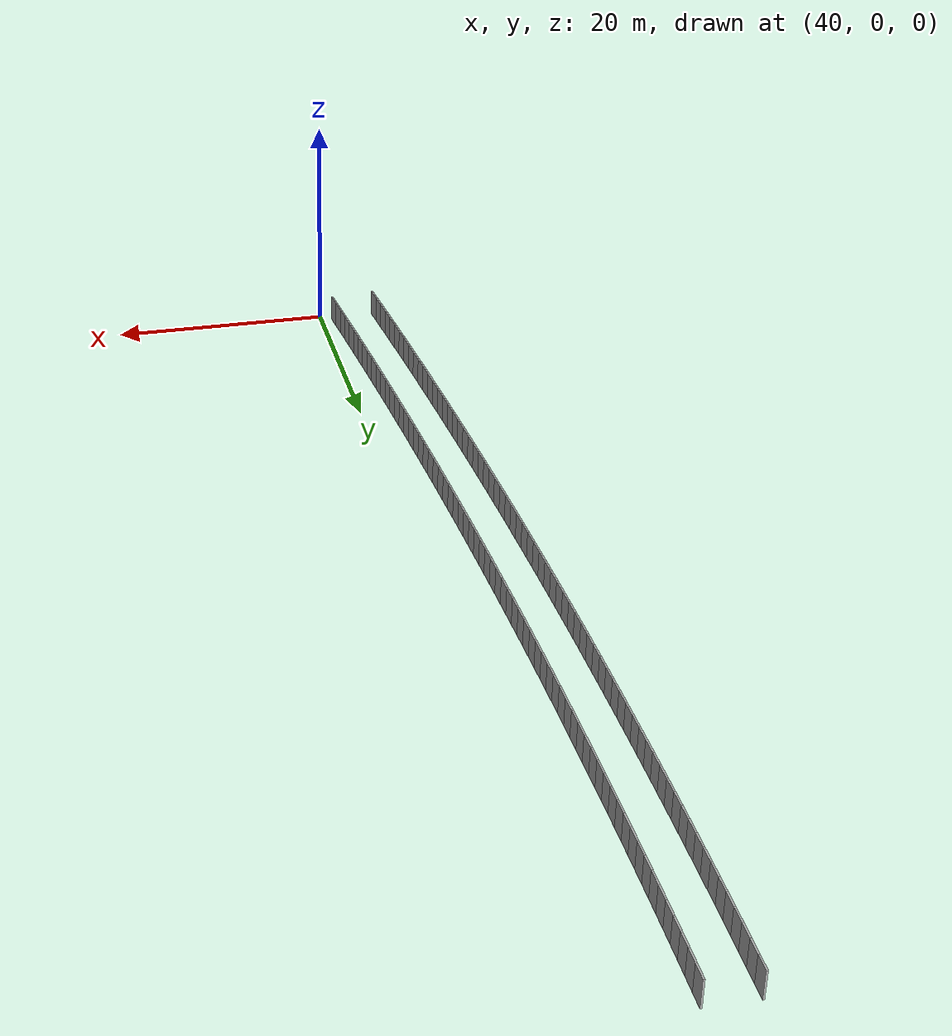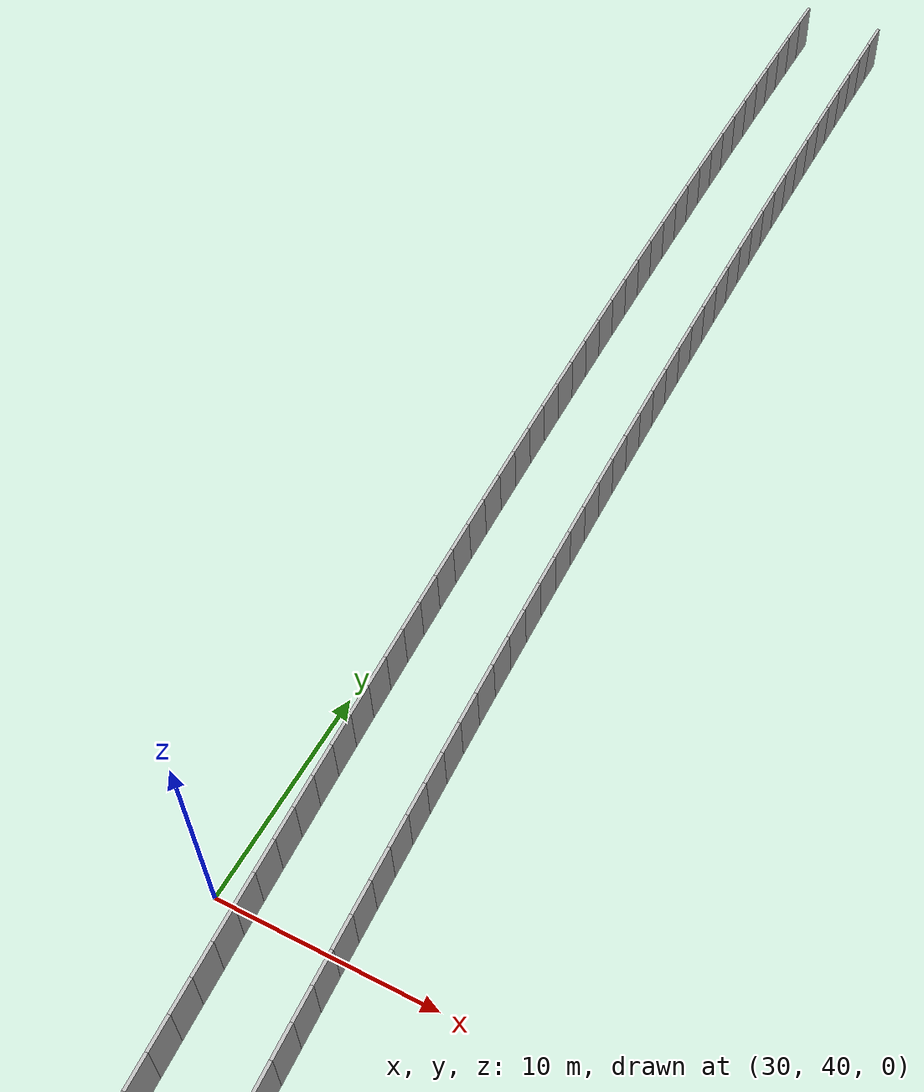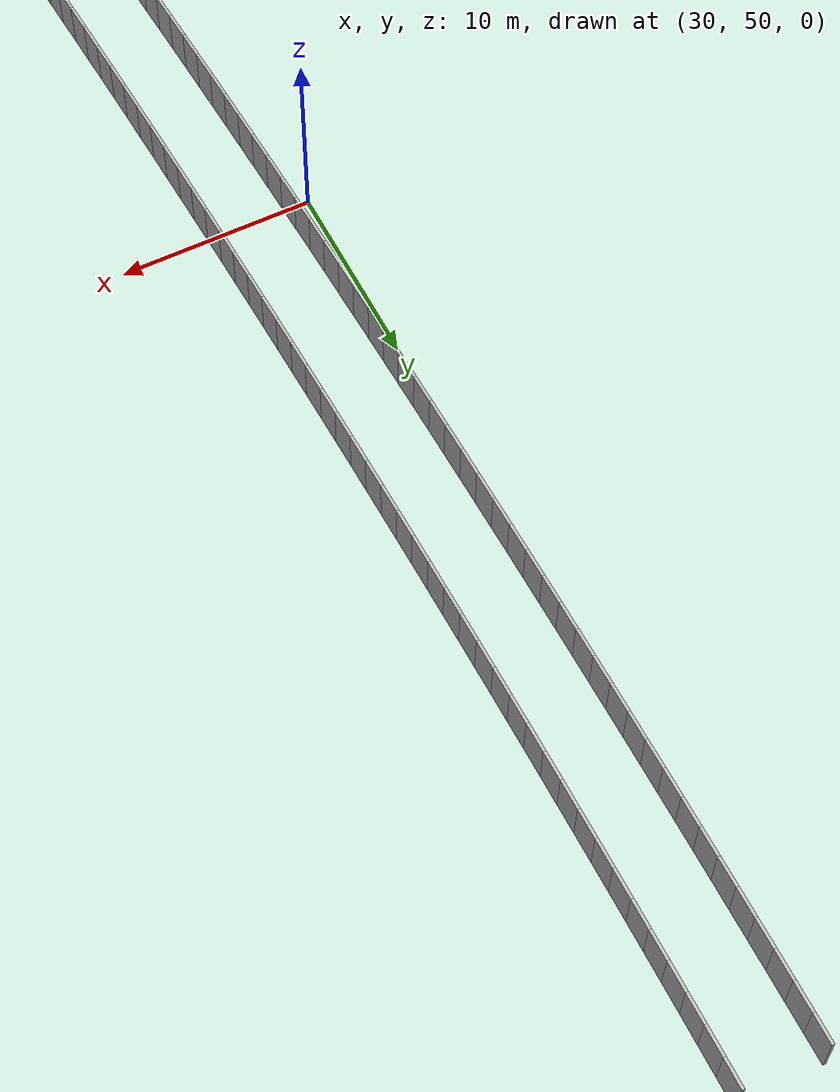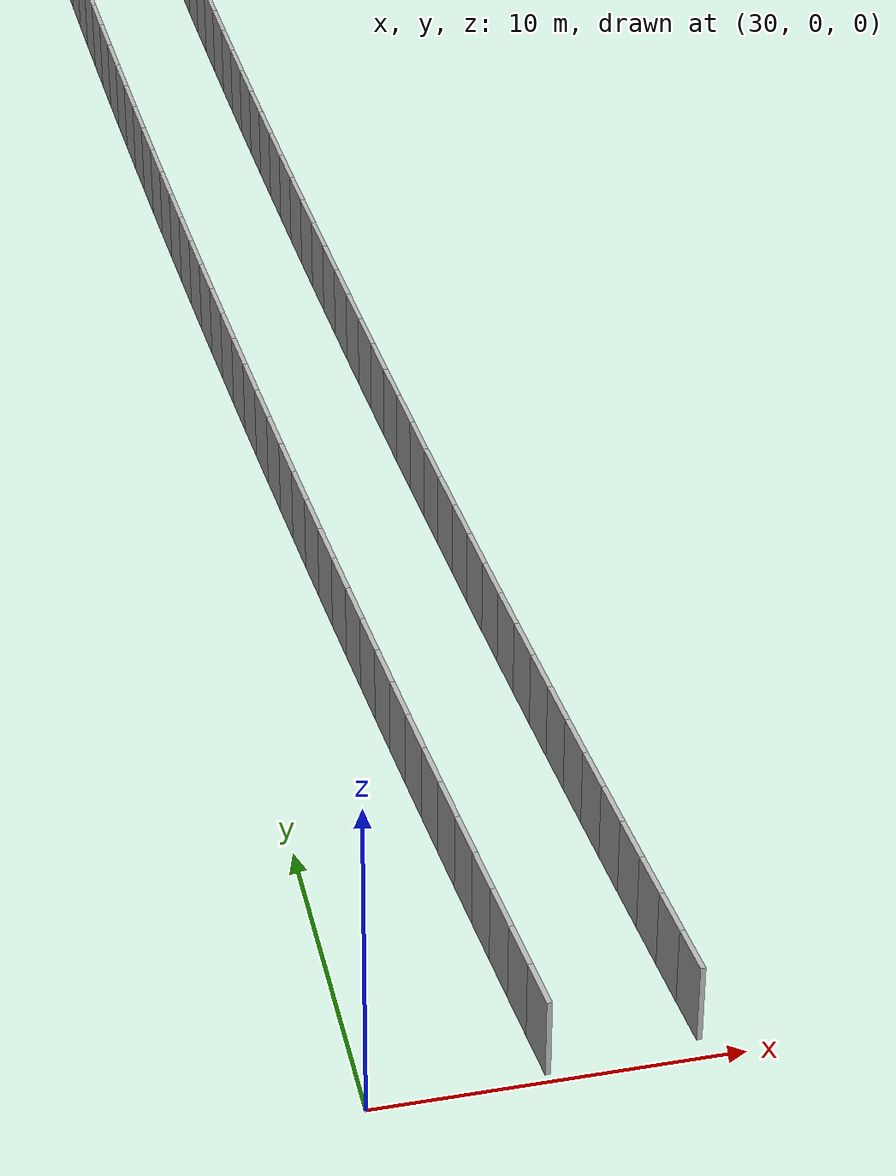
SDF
<sdf version="1.6">
 <model name="sps_0112">
  <static>1</static>
  <allow_auto_disable>0</allow_auto_disable>
  <link name="Wall5244">
   <collision name="collision"><geometry><box><size>1.49643 0.15 2.5</size></box></geometry></collision>
   <visual name="visual">
    <geometry><box><size>1.49643 0.15 2.5</size></box></geometry>
    <transparency>0.0</transparency>
   </visual>
   <pose>34.4289 98.5549 1.25 0 0 -1.57691</pose>
  </link>
  <link name="Wall5245">
   <collision name="collision"><geometry><box><size>1.49666 0.15 2.5</size></box></geometry></collision>
   <visual name="visual">
    <geometry><box><size>1.49666 0.15 2.5</size></box></geometry>
    <transparency>0.0</transparency>
   </visual>
   <pose>34.4209 97.0584 1.25 0 0 -1.57536</pose>
  </link>
  <link name="Wall5246">
   <collision name="collision"><geometry><box><size>1.49641 0.15 2.5</size></box></geometry></collision>
   <visual name="visual">
    <geometry><box><size>1.49641 0.15 2.5</size></box></geometry>
    <transparency>0.0</transparency>
   </visual>
   <pose>34.4152 95.5619 1.25 0 0 -1.57386</pose>
  </link>
  <link name="Wall5247">
   <collision name="collision"><geometry><box><size>1.49658 0.15 2.5</size></box></geometry></collision>
   <visual name="visual">
    <geometry><box><size>1.49658 0.15 2.5</size></box></geometry>
    <transparency>0.0</transparency>
   </visual>
   <pose>34.4118 94.0654 1.25 0 0 -1.57226</pose>
  </link>
  <link name="Wall5248">
   <collision name="collision"><geometry><box><size>1.49658 0.15 2.5</size></box></geometry></collision>
   <visual name="visual">
    <geometry><box><size>1.49658 0.15 2.5</size></box></geometry>
    <transparency>0.0</transparency>
   </visual>
   <pose>34.4108 92.5688 1.25 0 0 -1.57067</pose>
  </link>
  <link name="Wall5249">
   <collision name="collision"><geometry><box><size>1.4964 0.15 2.5</size></box></geometry></collision>
   <visual name="visual">
    <geometry><box><size>1.4964 0.15 2.5</size></box></geometry>
    <transparency>0.0</transparency>
   </visual>
   <pose>34.4122 91.0723 1.25 0 0 -1.56904</pose>
  </link>
  <link name="Wall5250">
   <collision name="collision"><geometry><box><size>1.49665 0.15 2.5</size></box></geometry></collision>
   <visual name="visual">
    <geometry><box><size>1.49665 0.15 2.5</size></box></geometry>
    <transparency>0.0</transparency>
   </visual>
   <pose>34.416 89.5758 1.25 0 0 -1.56745</pose>
  </link>
  <link name="Wall5251">
   <collision name="collision"><geometry><box><size>1.49642 0.15 2.5</size></box></geometry></collision>
   <visual name="visual">
    <geometry><box><size>1.49642 0.15 2.5</size></box></geometry>
    <transparency>0.0</transparency>
   </visual>
   <pose>34.4222 88.0793 1.25 0 0 -1.56586</pose>
  </link>
  <link name="Wall5252">
   <collision name="collision"><geometry><box><size>1.49661 0.15 2.5</size></box></geometry></collision>
   <visual name="visual">
    <geometry><box><size>1.49661 0.15 2.5</size></box></geometry>
    <transparency>0.0</transparency>
   </visual>
   <pose>34.4307 86.5828 1.25 0 0 -1.56427</pose>
  </link>
  <link name="Wall5253">
   <collision name="collision"><geometry><box><size>1.49645 0.15 2.5</size></box></geometry></collision>
   <visual name="visual">
    <geometry><box><size>1.49645 0.15 2.5</size></box></geometry>
    <transparency>0.0</transparency>
   </visual>
   <pose>34.4416 85.0863 1.25 0 0 -1.56276</pose>
  </link>
  <link name="Wall5254">
   <collision name="collision"><geometry><box><size>1.49665 0.15 2.5</size></box></geometry></collision>
   <visual name="visual">
    <geometry><box><size>1.49665 0.15 2.5</size></box></geometry>
    <transparency>0.0</transparency>
   </visual>
   <pose>34.4549 83.5898 1.25 0 0 -1.56117</pose>
  </link>
  <link name="Wall5255">
   <collision name="collision"><geometry><box><size>1.4965 0.15 2.5</size></box></geometry></collision>
   <visual name="visual">
    <geometry><box><size>1.4965 0.15 2.5</size></box></geometry>
    <transparency>0.0</transparency>
   </visual>
   <pose>34.4705 82.0933 1.25 0 0 -1.55946</pose>
  </link>
  <link name="Wall5256">
   <collision name="collision"><geometry><box><size>1.49652 0.15 2.5</size></box></geometry></collision>
   <visual name="visual">
    <geometry><box><size>1.49652 0.15 2.5</size></box></geometry>
    <transparency>0.0</transparency>
   </visual>
   <pose>34.4886 80.5969 1.25 0 0 -1.55795</pose>
  </link>
  <link name="Wall5257">
   <collision name="collision"><geometry><box><size>1.49637 0.15 2.5</size></box></geometry></collision>
   <visual name="visual">
    <geometry><box><size>1.49637 0.15 2.5</size></box></geometry>
    <transparency>0.0</transparency>
   </visual>
   <pose>34.5091 79.1006 1.25 0 0 -1.55636</pose>
  </link>
  <link name="Wall5258">
   <collision name="collision"><geometry><box><size>1.49659 0.15 2.5</size></box></geometry></collision>
   <visual name="visual">
    <geometry><box><size>1.49659 0.15 2.5</size></box></geometry>
    <transparency>0.0</transparency>
   </visual>
   <pose>34.5319 77.6043 1.25 0 0 -1.55477</pose>
  </link>
  <link name="Wall5259">
   <collision name="collision"><geometry><box><size>1.49644 0.15 2.5</size></box></geometry></collision>
   <visual name="visual">
    <geometry><box><size>1.49644 0.15 2.5</size></box></geometry>
    <transparency>0.0</transparency>
   </visual>
   <pose>34.5569 76.108 1.25 0 0 -1.5533</pose>
  </link>
  <link name="Wall5260">
   <collision name="collision"><geometry><box><size>1.49668 0.15 2.5</size></box></geometry></collision>
   <visual name="visual">
    <geometry><box><size>1.49668 0.15 2.5</size></box></geometry>
    <transparency>0.0</transparency>
   </visual>
   <pose>34.5844 74.6117 1.25 0 0 -1.55155</pose>
  </link>
  <link name="Wall5261">
   <collision name="collision"><geometry><box><size>1.49654 0.15 2.5</size></box></geometry></collision>
   <visual name="visual">
    <geometry><box><size>1.49654 0.15 2.5</size></box></geometry>
    <transparency>0.0</transparency>
   </visual>
   <pose>34.6143 73.1154 1.25 0 0 -1.55008</pose>
  </link>
  <link name="Wall5262">
   <collision name="collision"><geometry><box><size>1.49634 0.15 2.5</size></box></geometry></collision>
   <visual name="visual">
    <geometry><box><size>1.49634 0.15 2.5</size></box></geometry>
    <transparency>0.0</transparency>
   </visual>
   <pose>34.6465 71.6193 1.25 0 0 -1.54848</pose>
  </link>
  <link name="Wall5263">
   <collision name="collision"><geometry><box><size>1.49664 0.15 2.5</size></box></geometry></collision>
   <visual name="visual">
    <geometry><box><size>1.49664 0.15 2.5</size></box></geometry>
    <transparency>0.0</transparency>
   </visual>
   <pose>34.6811 70.1232 1.25 0 0 -1.54686</pose>
  </link>
  <link name="Wall5264">
   <collision name="collision"><geometry><box><size>1.49646 0.15 2.5</size></box></geometry></collision>
   <visual name="visual">
    <geometry><box><size>1.49646 0.15 2.5</size></box></geometry>
    <transparency>0.0</transparency>
   </visual>
   <pose>34.7182 68.6271 1.25 0 0 -1.54526</pose>
  </link>
  <link name="Wall5265">
   <collision name="collision"><geometry><box><size>1.49658 0.15 2.5</size></box></geometry></collision>
   <visual name="visual">
    <geometry><box><size>1.49658 0.15 2.5</size></box></geometry>
    <transparency>0.0</transparency>
   </visual>
   <pose>34.7576 67.1311 1.25 0 0 -1.54367</pose>
  </link>
  <link name="Wall5266">
   <collision name="collision"><geometry><box><size>1.49659 0.15 2.5</size></box></geometry></collision>
   <visual name="visual">
    <geometry><box><size>1.49659 0.15 2.5</size></box></geometry>
    <transparency>0.0</transparency>
   </visual>
   <pose>34.7994 65.6351 1.25 0 0 -1.54204</pose>
  </link>
  <link name="Wall5267">
   <collision name="collision"><geometry><box><size>1.49647 0.15 2.5</size></box></geometry></collision>
   <visual name="visual">
    <geometry><box><size>1.49647 0.15 2.5</size></box></geometry>
    <transparency>0.0</transparency>
   </visual>
   <pose>34.8435 64.1392 1.25 0 0 -1.54061</pose>
  </link>
  <link name="Wall5268">
   <collision name="collision"><geometry><box><size>1.49655 0.15 2.5</size></box></geometry></collision>
   <visual name="visual">
    <geometry><box><size>1.49655 0.15 2.5</size></box></geometry>
    <transparency>0.0</transparency>
   </visual>
   <pose>34.8899 62.6434 1.25 0 0 -1.53886</pose>
  </link>
  <link name="Wall5269">
   <collision name="collision"><geometry><box><size>1.49644 0.15 2.5</size></box></geometry></collision>
   <visual name="visual">
    <geometry><box><size>1.49644 0.15 2.5</size></box></geometry>
    <transparency>0.0</transparency>
   </visual>
   <pose>34.9388 61.1477 1.25 0 0 -1.53739</pose>
  </link>
  <link name="Wall5270">
   <collision name="collision"><geometry><box><size>1.49652 0.15 2.5</size></box></geometry></collision>
   <visual name="visual">
    <geometry><box><size>1.49652 0.15 2.5</size></box></geometry>
    <transparency>0.0</transparency>
   </visual>
   <pose>34.99 59.6521 1.25 0 0 -1.53576</pose>
  </link>
  <link name="Wall5271">
   <collision name="collision"><geometry><box><size>1.49661 0.15 2.5</size></box></geometry></collision>
   <visual name="visual">
    <geometry><box><size>1.49661 0.15 2.5</size></box></geometry>
    <transparency>0.0</transparency>
   </visual>
   <pose>35.0437 58.1565 1.25 0 0 -1.53417</pose>
  </link>
  <link name="Wall5272">
   <collision name="collision"><geometry><box><size>1.4967 0.15 2.5</size></box></geometry></collision>
   <visual name="visual">
    <geometry><box><size>1.4967 0.15 2.5</size></box></geometry>
    <transparency>0.0</transparency>
   </visual>
   <pose>35.0997 56.6609 1.25 0 0 -1.53258</pose>
  </link>
  <link name="Wall5273">
   <collision name="collision"><geometry><box><size>1.49636 0.15 2.5</size></box></geometry></collision>
   <visual name="visual">
    <geometry><box><size>1.49636 0.15 2.5</size></box></geometry>
    <transparency>0.0</transparency>
   </visual>
   <pose>35.158 55.1655 1.25 0 0 -1.5311</pose>
  </link>
  <link name="Wall5274">
   <collision name="collision"><geometry><box><size>1.49652 0.15 2.5</size></box></geometry></collision>
   <visual name="visual">
    <geometry><box><size>1.49652 0.15 2.5</size></box></geometry>
    <transparency>0.0</transparency>
   </visual>
   <pose>35.2186 53.6703 1.25 0 0 -1.52947</pose>
  </link>
  <link name="Wall5275">
   <collision name="collision"><geometry><box><size>1.49656 0.15 2.5</size></box></geometry></collision>
   <visual name="visual">
    <geometry><box><size>1.49656 0.15 2.5</size></box></geometry>
    <transparency>0.0</transparency>
   </visual>
   <pose>35.2816 52.1751 1.25 0 0 -1.52788</pose>
  </link>
  <link name="Wall5276">
   <collision name="collision"><geometry><box><size>1.49649 0.15 2.5</size></box></geometry></collision>
   <visual name="visual">
    <geometry><box><size>1.49649 0.15 2.5</size></box></geometry>
    <transparency>0.0</transparency>
   </visual>
   <pose>35.3471 50.68 1.25 0 0 -1.52616</pose>
  </link>
  <link name="Wall5277">
   <collision name="collision"><geometry><box><size>1.49659 0.15 2.5</size></box></geometry></collision>
   <visual name="visual">
    <geometry><box><size>1.49659 0.15 2.5</size></box></geometry>
    <transparency>0.0</transparency>
   </visual>
   <pose>35.415 49.185 1.25 0 0 -1.52465</pose>
  </link>
  <link name="Wall5278">
   <collision name="collision"><geometry><box><size>1.49651 0.15 2.5</size></box></geometry></collision>
   <visual name="visual">
    <geometry><box><size>1.49651 0.15 2.5</size></box></geometry>
    <transparency>0.0</transparency>
   </visual>
   <pose>35.4852 47.6901 1.25 0 0 -1.5231</pose>
  </link>
  <link name="Wall5279">
   <collision name="collision"><geometry><box><size>1.49644 0.15 2.5</size></box></geometry></collision>
   <visual name="visual">
    <geometry><box><size>1.49644 0.15 2.5</size></box></geometry>
    <transparency>0.0</transparency>
   </visual>
   <pose>35.5576 46.1954 1.25 0 0 -1.52159</pose>
  </link>
  <link name="Wall5280">
   <collision name="collision"><geometry><box><size>1.49669 0.15 2.5</size></box></geometry></collision>
   <visual name="visual">
    <geometry><box><size>1.49669 0.15 2.5</size></box></geometry>
    <transparency>0.0</transparency>
   </visual>
   <pose>35.6326 44.7007 1.25 0 0 -1.51984</pose>
  </link>
  <link name="Wall5281">
   <collision name="collision"><geometry><box><size>1.4965 0.15 2.5</size></box></geometry></collision>
   <visual name="visual">
    <geometry><box><size>1.4965 0.15 2.5</size></box></geometry>
    <transparency>0.0</transparency>
   </visual>
   <pose>35.7099 43.2061 1.25 0 0 -1.5184</pose>
  </link>
  <link name="Wall5282">
   <collision name="collision"><geometry><box><size>1.49657 0.15 2.5</size></box></geometry></collision>
   <visual name="visual">
    <geometry><box><size>1.49657 0.15 2.5</size></box></geometry>
    <transparency>0.0</transparency>
   </visual>
   <pose>35.7895 41.7117 1.25 0 0 -1.51677</pose>
  </link>
  <link name="Wall5283">
   <collision name="collision"><geometry><box><size>1.49633 0.15 2.5</size></box></geometry></collision>
   <visual name="visual">
    <geometry><box><size>1.49633 0.15 2.5</size></box></geometry>
    <transparency>0.0</transparency>
   </visual>
   <pose>35.8715 40.2175 1.25 0 0 -1.51517</pose>
  </link>
  <link name="Wall5284">
   <collision name="collision"><geometry><box><size>1.49664 0.15 2.5</size></box></geometry></collision>
   <visual name="visual">
    <geometry><box><size>1.49664 0.15 2.5</size></box></geometry>
    <transparency>0.0</transparency>
   </visual>
   <pose>35.9557 38.7234 1.25 0 0 -1.51371</pose>
  </link>
  <link name="Wall5285">
   <collision name="collision"><geometry><box><size>1.49655 0.15 2.5</size></box></geometry></collision>
   <visual name="visual">
    <geometry><box><size>1.49655 0.15 2.5</size></box></geometry>
    <transparency>0.0</transparency>
   </visual>
   <pose>36.0424 37.2293 1.25 0 0 -1.51195</pose>
  </link>
  <link name="Wall5286">
   <collision name="collision"><geometry><box><size>1.49656 0.15 2.5</size></box></geometry></collision>
   <visual name="visual">
    <geometry><box><size>1.49656 0.15 2.5</size></box></geometry>
    <transparency>0.0</transparency>
   </visual>
   <pose>36.1316 35.7354 1.25 0 0 -1.51048</pose>
  </link>
  <link name="Wall5287">
   <collision name="collision"><geometry><box><size>1.49647 0.15 2.5</size></box></geometry></collision>
   <visual name="visual">
    <geometry><box><size>1.49647 0.15 2.5</size></box></geometry>
    <transparency>0.0</transparency>
   </visual>
   <pose>36.223 34.2417 1.25 0 0 -1.50876</pose>
  </link>
  <link name="Wall5288">
   <collision name="collision"><geometry><box><size>1.49643 0.15 2.5</size></box></geometry></collision>
   <visual name="visual">
    <geometry><box><size>1.49643 0.15 2.5</size></box></geometry>
    <transparency>0.0</transparency>
   </visual>
   <pose>36.3169 32.7482 1.25 0 0 -1.50725</pose>
  </link>
  <link name="Wall5289">
   <collision name="collision"><geometry><box><size>1.49658 0.15 2.5</size></box></geometry></collision>
   <visual name="visual">
    <geometry><box><size>1.49658 0.15 2.5</size></box></geometry>
    <transparency>0.0</transparency>
   </visual>
   <pose>36.4132 31.2548 1.25 0 0 -1.50566</pose>
  </link>
  <link name="Wall5290">
   <collision name="collision"><geometry><box><size>1.4965 0.15 2.5</size></box></geometry></collision>
   <visual name="visual">
    <geometry><box><size>1.4965 0.15 2.5</size></box></geometry>
    <transparency>0.0</transparency>
   </visual>
   <pose>36.5118 29.7615 1.25 0 0 -1.50406</pose>
  </link>
  <link name="Wall5291">
   <collision name="collision"><geometry><box><size>1.49652 0.15 2.5</size></box></geometry></collision>
   <visual name="visual">
    <geometry><box><size>1.49652 0.15 2.5</size></box></geometry>
    <transparency>0.0</transparency>
   </visual>
   <pose>36.6127 28.2684 1.25 0 0 -1.50259</pose>
  </link>
  <link name="Wall5292">
   <collision name="collision"><geometry><box><size>1.49664 0.15 2.5</size></box></geometry></collision>
   <visual name="visual">
    <geometry><box><size>1.49664 0.15 2.5</size></box></geometry>
    <transparency>0.0</transparency>
   </visual>
   <pose>36.716 26.7754 1.25 0 0 -1.50084</pose>
  </link>
  <link name="Wall5293">
   <collision name="collision"><geometry><box><size>1.49643 0.15 2.5</size></box></geometry></collision>
   <visual name="visual">
    <geometry><box><size>1.49643 0.15 2.5</size></box></geometry>
    <transparency>0.0</transparency>
   </visual>
   <pose>36.8217 25.2826 1.25 0 0 -1.49936</pose>
  </link>
  <link name="Wall5294">
   <collision name="collision"><geometry><box><size>1.49654 0.15 2.5</size></box></geometry></collision>
   <visual name="visual">
    <geometry><box><size>1.49654 0.15 2.5</size></box></geometry>
    <transparency>0.0</transparency>
   </visual>
   <pose>36.9297 23.79 1.25 0 0 -1.49777</pose>
  </link>
  <link name="Wall5295">
   <collision name="collision"><geometry><box><size>1.49661 0.15 2.5</size></box></geometry></collision>
   <visual name="visual">
    <geometry><box><size>1.49661 0.15 2.5</size></box></geometry>
    <transparency>0.0</transparency>
   </visual>
   <pose>37.0402 22.2975 1.25 0 0 -1.49605</pose>
  </link>
  <link name="Wall5296">
   <collision name="collision"><geometry><box><size>1.49652 0.15 2.5</size></box></geometry></collision>
   <visual name="visual">
    <geometry><box><size>1.49652 0.15 2.5</size></box></geometry>
    <transparency>0.0</transparency>
   </visual>
   <pose>37.1529 20.8052 1.25 0 0 -1.49466</pose>
  </link>
  <link name="Wall5297">
   <collision name="collision"><geometry><box><size>1.49672 0.15 2.5</size></box></geometry></collision>
   <visual name="visual">
    <geometry><box><size>1.49672 0.15 2.5</size></box></geometry>
    <transparency>0.0</transparency>
   </visual>
   <pose>37.2681 19.313 1.25 0 0 -1.49295</pose>
  </link>
  <link name="Wall5298">
   <collision name="collision"><geometry><box><size>1.49653 0.15 2.5</size></box></geometry></collision>
   <visual name="visual">
    <geometry><box><size>1.49653 0.15 2.5</size></box></geometry>
    <transparency>0.0</transparency>
   </visual>
   <pose>37.3856 17.821 1.25 0 0 -1.49147</pose>
  </link>
  <link name="Wall5299">
   <collision name="collision"><geometry><box><size>1.49648 0.15 2.5</size></box></geometry></collision>
   <visual name="visual">
    <geometry><box><size>1.49648 0.15 2.5</size></box></geometry>
    <transparency>0.0</transparency>
   </visual>
   <pose>37.5054 16.3293 1.25 0 0 -1.48983</pose>
  </link>
  <link name="Wall5300">
   <collision name="collision"><geometry><box><size>1.49649 0.15 2.5</size></box></geometry></collision>
   <visual name="visual">
    <geometry><box><size>1.49649 0.15 2.5</size></box></geometry>
    <transparency>0.0</transparency>
   </visual>
   <pose>37.6276 14.8378 1.25 0 0 -1.48827</pose>
  </link>
  <link name="Wall5301">
   <collision name="collision"><geometry><box><size>1.49649 0.15 2.5</size></box></geometry></collision>
   <visual name="visual">
    <geometry><box><size>1.49649 0.15 2.5</size></box></geometry>
    <transparency>0.0</transparency>
   </visual>
   <pose>37.752 13.3465 1.25 0 0 -1.48676</pose>
  </link>
  <link name="Wall5302">
   <collision name="collision"><geometry><box><size>1.49653 0.15 2.5</size></box></geometry></collision>
   <visual name="visual">
    <geometry><box><size>1.49653 0.15 2.5</size></box></geometry>
    <transparency>0.0</transparency>
   </visual>
   <pose>37.879 11.8554 1.25 0 0 -1.485</pose>
  </link>
  <link name="Wall5303">
   <collision name="collision"><geometry><box><size>1.49629 0.15 2.5</size></box></geometry></collision>
   <visual name="visual">
    <geometry><box><size>1.49629 0.15 2.5</size></box></geometry>
    <transparency>0.0</transparency>
   </visual>
   <pose>38.0083 10.3646 1.25 0 0 -1.48356</pose>
  </link>
  <link name="Wall5304">
   <collision name="collision"><geometry><box><size>1.49652 0.15 2.5</size></box></geometry></collision>
   <visual name="visual">
    <geometry><box><size>1.49652 0.15 2.5</size></box></geometry>
    <transparency>0.0</transparency>
   </visual>
   <pose>38.1399 8.87398 1.25 0 0 -1.48181</pose>
  </link>
  <link name="Wall5305">
   <collision name="collision"><geometry><box><size>1.49672 0.15 2.5</size></box></geometry></collision>
   <visual name="visual">
    <geometry><box><size>1.49672 0.15 2.5</size></box></geometry>
    <transparency>0.0</transparency>
   </visual>
   <pose>38.274 7.38338 1.25 0 0 -1.48035</pose>
  </link>
  <link name="Wall5306">
   <collision name="collision"><geometry><box><size>1.49652 0.15 2.5</size></box></geometry></collision>
   <visual name="visual">
    <geometry><box><size>1.49652 0.15 2.5</size></box></geometry>
    <transparency>0.0</transparency>
   </visual>
   <pose>38.4105 5.89299 1.25 0 0 -1.4787</pose>
  </link>
  <link name="Wall5307">
   <collision name="collision"><geometry><box><size>1.49653 0.15 2.5</size></box></geometry></collision>
   <visual name="visual">
    <geometry><box><size>1.49653 0.15 2.5</size></box></geometry>
    <transparency>0.0</transparency>
   </visual>
   <pose>38.5492 4.40291 1.25 0 0 -1.47726</pose>
  </link>
  <link name="Wall5308">
   <collision name="collision"><geometry><box><size>1.4966 0.15 2.5</size></box></geometry></collision>
   <visual name="visual">
    <geometry><box><size>1.4966 0.15 2.5</size></box></geometry>
    <transparency>0.0</transparency>
   </visual>
   <pose>38.6902 2.91301 1.25 0 0 -1.47551</pose>
  </link>
  <link name="Wall5309">
   <collision name="collision"><geometry><box><size>1.49644 0.15 2.5</size></box></geometry></collision>
   <visual name="visual">
    <geometry><box><size>1.49644 0.15 2.5</size></box></geometry>
    <transparency>0.0</transparency>
   </visual>
   <pose>38.8337 1.42338 1.25 0 0 -1.47402</pose>
  </link>
  <link name="Wall7040">
   <collision name="collision"><geometry><box><size>1.50302 0.15 2.5</size></box></geometry></collision>
   <visual name="visual">
    <geometry><box><size>1.50302 0.15 2.5</size></box></geometry>
    <transparency>0.0</transparency>
   </visual>
   <pose>30.2897 98.5804 1.25 0 0 -1.57693</pose>
  </link>
  <link name="Wall7041">
   <collision name="collision"><geometry><box><size>1.50319 0.15 2.5</size></box></geometry></collision>
   <visual name="visual">
    <geometry><box><size>1.50319 0.15 2.5</size></box></geometry>
    <transparency>0.0</transparency>
   </visual>
   <pose>30.2815 97.0773 1.25 0 0 -1.57547</pose>
  </link>
  <link name="Wall7042">
   <collision name="collision"><geometry><box><size>1.503 0.15 2.5</size></box></geometry></collision>
   <visual name="visual">
    <geometry><box><size>1.503 0.15 2.5</size></box></geometry>
    <transparency>0.0</transparency>
   </visual>
   <pose>30.2758 95.5742 1.25 0 0 -1.57372</pose>
  </link>
  <link name="Wall7043">
   <collision name="collision"><geometry><box><size>1.50324 0.15 2.5</size></box></geometry></collision>
   <visual name="visual">
    <geometry><box><size>1.50324 0.15 2.5</size></box></geometry>
    <transparency>0.0</transparency>
   </visual>
   <pose>30.2725 94.0711 1.25 0 0 -1.57226</pose>
  </link>
  <link name="Wall7044">
   <collision name="collision"><geometry><box><size>1.50299 0.15 2.5</size></box></geometry></collision>
   <visual name="visual">
    <geometry><box><size>1.50299 0.15 2.5</size></box></geometry>
    <transparency>0.0</transparency>
   </visual>
   <pose>30.2715 92.568 1.25 0 0 -1.57067</pose>
  </link>
  <link name="Wall7045">
   <collision name="collision"><geometry><box><size>1.50299 0.15 2.5</size></box></geometry></collision>
   <visual name="visual">
    <geometry><box><size>1.50299 0.15 2.5</size></box></geometry>
    <transparency>0.0</transparency>
   </visual>
   <pose>30.2729 91.065 1.25 0 0 -1.56905</pose>
  </link>
  <link name="Wall7046">
   <collision name="collision"><geometry><box><size>1.50318 0.15 2.5</size></box></geometry></collision>
   <visual name="visual">
    <geometry><box><size>1.50318 0.15 2.5</size></box></geometry>
    <transparency>0.0</transparency>
   </visual>
   <pose>30.2768 89.5619 1.25 0 0 -1.56734</pose>
  </link>
  <link name="Wall7047">
   <collision name="collision"><geometry><box><size>1.50307 0.15 2.5</size></box></geometry></collision>
   <visual name="visual">
    <geometry><box><size>1.50307 0.15 2.5</size></box></geometry>
    <transparency>0.0</transparency>
   </visual>
   <pose>30.283 88.0588 1.25 0 0 -1.566</pose>
  </link>
  <link name="Wall7048">
   <collision name="collision"><geometry><box><size>1.50321 0.15 2.5</size></box></geometry></collision>
   <visual name="visual">
    <geometry><box><size>1.50321 0.15 2.5</size></box></geometry>
    <transparency>0.0</transparency>
   </visual>
   <pose>30.2916 86.5557 1.25 0 0 -1.56426</pose>
  </link>
  <link name="Wall7049">
   <collision name="collision"><geometry><box><size>1.50304 0.15 2.5</size></box></geometry></collision>
   <visual name="visual">
    <geometry><box><size>1.50304 0.15 2.5</size></box></geometry>
    <transparency>0.0</transparency>
   </visual>
   <pose>30.3026 85.0526 1.25 0 0 -1.56267</pose>
  </link>
  <link name="Wall7050">
   <collision name="collision"><geometry><box><size>1.50306 0.15 2.5</size></box></geometry></collision>
   <visual name="visual">
    <geometry><box><size>1.50306 0.15 2.5</size></box></geometry>
    <transparency>0.0</transparency>
   </visual>
   <pose>30.3159 83.5496 1.25 0 0 -1.56121</pose>
  </link>
  <link name="Wall7051">
   <collision name="collision"><geometry><box><size>1.50309 0.15 2.5</size></box></geometry></collision>
   <visual name="visual">
    <geometry><box><size>1.50309 0.15 2.5</size></box></geometry>
    <transparency>0.0</transparency>
   </visual>
   <pose>30.3316 82.0466 1.25 0 0 -1.55951</pose>
  </link>
  <link name="Wall7052">
   <collision name="collision"><geometry><box><size>1.50318 0.15 2.5</size></box></geometry></collision>
   <visual name="visual">
    <geometry><box><size>1.50318 0.15 2.5</size></box></geometry>
    <transparency>0.0</transparency>
   </visual>
   <pose>30.3498 80.5436 1.25 0 0 -1.55788</pose>
  </link>
  <link name="Wall7053">
   <collision name="collision"><geometry><box><size>1.5029 0.15 2.5</size></box></geometry></collision>
   <visual name="visual">
    <geometry><box><size>1.5029 0.15 2.5</size></box></geometry>
    <transparency>0.0</transparency>
   </visual>
   <pose>30.3703 79.0407 1.25 0 0 -1.55642</pose>
  </link>
  <link name="Wall7054">
   <collision name="collision"><geometry><box><size>1.50324 0.15 2.5</size></box></geometry></collision>
   <visual name="visual">
    <geometry><box><size>1.50324 0.15 2.5</size></box></geometry>
    <transparency>0.0</transparency>
   </visual>
   <pose>30.3931 77.5378 1.25 0 0 -1.55484</pose>
  </link>
  <link name="Wall7055">
   <collision name="collision"><geometry><box><size>1.50298 0.15 2.5</size></box></geometry></collision>
   <visual name="visual">
    <geometry><box><size>1.50298 0.15 2.5</size></box></geometry>
    <transparency>0.0</transparency>
   </visual>
   <pose>30.4183 76.0349 1.25 0 0 -1.55321</pose>
  </link>
  <link name="Wall7056">
   <collision name="collision"><geometry><box><size>1.50308 0.15 2.5</size></box></geometry></collision>
   <visual name="visual">
    <geometry><box><size>1.50308 0.15 2.5</size></box></geometry>
    <transparency>0.0</transparency>
   </visual>
   <pose>30.4459 74.5321 1.25 0 0 -1.55167</pose>
  </link>
  <link name="Wall7057">
   <collision name="collision"><geometry><box><size>1.50313 0.15 2.5</size></box></geometry></collision>
   <visual name="visual">
    <geometry><box><size>1.50313 0.15 2.5</size></box></geometry>
    <transparency>0.0</transparency>
   </visual>
   <pose>30.4759 73.0293 1.25 0 0 -1.55</pose>
  </link>
  <link name="Wall7058">
   <collision name="collision"><geometry><box><size>1.503 0.15 2.5</size></box></geometry></collision>
   <visual name="visual">
    <geometry><box><size>1.503 0.15 2.5</size></box></geometry>
    <transparency>0.0</transparency>
   </visual>
   <pose>30.5084 71.5266 1.25 0 0 -1.54834</pose>
  </link>
  <link name="Wall7059">
   <collision name="collision"><geometry><box><size>1.50324 0.15 2.5</size></box></geometry></collision>
   <visual name="visual">
    <geometry><box><size>1.50324 0.15 2.5</size></box></geometry>
    <transparency>0.0</transparency>
   </visual>
   <pose>30.5432 70.0239 1.25 0 0 -1.54684</pose>
  </link>
  <link name="Wall7060">
   <collision name="collision"><geometry><box><size>1.50305 0.15 2.5</size></box></geometry></collision>
   <visual name="visual">
    <geometry><box><size>1.50305 0.15 2.5</size></box></geometry>
    <transparency>0.0</transparency>
   </visual>
   <pose>30.5803 68.5212 1.25 0 0 -1.54537</pose>
  </link>
  <link name="Wall7061">
   <collision name="collision"><geometry><box><size>1.50299 0.15 2.5</size></box></geometry></collision>
   <visual name="visual">
    <geometry><box><size>1.50299 0.15 2.5</size></box></geometry>
    <transparency>0.0</transparency>
   </visual>
   <pose>30.6197 67.0187 1.25 0 0 -1.54379</pose>
  </link>
  <link name="Wall7062">
   <collision name="collision"><geometry><box><size>1.503 0.15 2.5</size></box></geometry></collision>
   <visual name="visual">
    <geometry><box><size>1.503 0.15 2.5</size></box></geometry>
    <transparency>0.0</transparency>
   </visual>
   <pose>30.6616 65.5163 1.25 0 0 -1.54204</pose>
  </link>
  <link name="Wall7063">
   <collision name="collision"><geometry><box><size>1.50307 0.15 2.5</size></box></geometry></collision>
   <visual name="visual">
    <geometry><box><size>1.50307 0.15 2.5</size></box></geometry>
    <transparency>0.0</transparency>
   </visual>
   <pose>30.706 64.0139 1.25 0 0 -1.54058</pose>
  </link>
  <link name="Wall7064">
   <collision name="collision"><geometry><box><size>1.50321 0.15 2.5</size></box></geometry></collision>
   <visual name="visual">
    <geometry><box><size>1.50321 0.15 2.5</size></box></geometry>
    <transparency>0.0</transparency>
   </visual>
   <pose>30.7526 62.5115 1.25 0 0 -1.53888</pose>
  </link>
  <link name="Wall7065">
   <collision name="collision"><geometry><box><size>1.50304 0.15 2.5</size></box></geometry></collision>
   <visual name="visual">
    <geometry><box><size>1.50304 0.15 2.5</size></box></geometry>
    <transparency>0.0</transparency>
   </visual>
   <pose>30.8017 61.0092 1.25 0 0 -1.53737</pose>
  </link>
  <link name="Wall7066">
   <collision name="collision"><geometry><box><size>1.50312 0.15 2.5</size></box></geometry></collision>
   <visual name="visual">
    <geometry><box><size>1.50312 0.15 2.5</size></box></geometry>
    <transparency>0.0</transparency>
   </visual>
   <pose>30.8532 59.507 1.25 0 0 -1.53579</pose>
  </link>
  <link name="Wall7067">
   <collision name="collision"><geometry><box><size>1.50297 0.15 2.5</size></box></geometry></collision>
   <visual name="visual">
    <geometry><box><size>1.50297 0.15 2.5</size></box></geometry>
    <transparency>0.0</transparency>
   </visual>
   <pose>30.9071 58.0049 1.25 0 0 -1.53408</pose>
  </link>
  <link name="Wall7068">
   <collision name="collision"><geometry><box><size>1.50329 0.15 2.5</size></box></geometry></collision>
   <visual name="visual">
    <geometry><box><size>1.50329 0.15 2.5</size></box></geometry>
    <transparency>0.0</transparency>
   </visual>
   <pose>30.9633 56.5028 1.25 0 0 -1.53262</pose>
  </link>
  <link name="Wall7069">
   <collision name="collision"><geometry><box><size>1.5032 0.15 2.5</size></box></geometry></collision>
   <visual name="visual">
    <geometry><box><size>1.5032 0.15 2.5</size></box></geometry>
    <transparency>0.0</transparency>
   </visual>
   <pose>31.0219 55.0007 1.25 0 0 -1.53099</pose>
  </link>
  <link name="Wall7070">
   <collision name="collision"><geometry><box><size>1.50311 0.15 2.5</size></box></geometry></collision>
   <visual name="visual">
    <geometry><box><size>1.50311 0.15 2.5</size></box></geometry>
    <transparency>0.0</transparency>
   </visual>
   <pose>31.0828 53.4988 1.25 0 0 -1.52953</pose>
  </link>
  <link name="Wall7071">
   <collision name="collision"><geometry><box><size>1.50297 0.15 2.5</size></box></geometry></collision>
   <visual name="visual">
    <geometry><box><size>1.50297 0.15 2.5</size></box></geometry>
    <transparency>0.0</transparency>
   </visual>
   <pose>31.146 51.9971 1.25 0 0 -1.52794</pose>
  </link>
  <link name="Wall7072">
   <collision name="collision"><geometry><box><size>1.50308 0.15 2.5</size></box></geometry></collision>
   <visual name="visual">
    <geometry><box><size>1.50308 0.15 2.5</size></box></geometry>
    <transparency>0.0</transparency>
   </visual>
   <pose>31.2118 50.4955 1.25 0 0 -1.5262</pose>
  </link>
  <link name="Wall7073">
   <collision name="collision"><geometry><box><size>1.50319 0.15 2.5</size></box></geometry></collision>
   <visual name="visual">
    <geometry><box><size>1.50319 0.15 2.5</size></box></geometry>
    <transparency>0.0</transparency>
   </visual>
   <pose>31.28 48.9939 1.25 0 0 -1.52461</pose>
  </link>
  <link name="Wall7074">
   <collision name="collision"><geometry><box><size>1.50311 0.15 2.5</size></box></geometry></collision>
   <visual name="visual">
    <geometry><box><size>1.50311 0.15 2.5</size></box></geometry>
    <transparency>0.0</transparency>
   </visual>
   <pose>31.3505 47.4924 1.25 0 0 -1.52315</pose>
  </link>
  <link name="Wall7075">
   <collision name="collision"><geometry><box><size>1.50304 0.15 2.5</size></box></geometry></collision>
   <visual name="visual">
    <geometry><box><size>1.50304 0.15 2.5</size></box></geometry>
    <transparency>0.0</transparency>
   </visual>
   <pose>31.4232 45.9911 1.25 0 0 -1.52156</pose>
  </link>
  <link name="Wall7076">
   <collision name="collision"><geometry><box><size>1.50292 0.15 2.5</size></box></geometry></collision>
   <visual name="visual">
    <geometry><box><size>1.50292 0.15 2.5</size></box></geometry>
    <transparency>0.0</transparency>
   </visual>
   <pose>31.4984 44.49 1.25 0 0 -1.51993</pose>
  </link>
  <link name="Wall7077">
   <collision name="collision"><geometry><box><size>1.5031 0.15 2.5</size></box></geometry></collision>
   <visual name="visual">
    <geometry><box><size>1.5031 0.15 2.5</size></box></geometry>
    <transparency>0.0</transparency>
   </visual>
   <pose>31.576 42.989 1.25 0 0 -1.51835</pose>
  </link>
  <link name="Wall7078">
   <collision name="collision"><geometry><box><size>1.50317 0.15 2.5</size></box></geometry></collision>
   <visual name="visual">
    <geometry><box><size>1.50317 0.15 2.5</size></box></geometry>
    <transparency>0.0</transparency>
   </visual>
   <pose>31.6561 41.488 1.25 0 0 -1.51673</pose>
  </link>
  <link name="Wall7079">
   <collision name="collision"><geometry><box><size>1.50293 0.15 2.5</size></box></geometry></collision>
   <visual name="visual">
    <geometry><box><size>1.50293 0.15 2.5</size></box></geometry>
    <transparency>0.0</transparency>
   </visual>
   <pose>31.7385 39.9872 1.25 0 0 -1.51517</pose>
  </link>
  <link name="Wall7080">
   <collision name="collision"><geometry><box><size>1.50326 0.15 2.5</size></box></geometry></collision>
   <visual name="visual">
    <geometry><box><size>1.50326 0.15 2.5</size></box></geometry>
    <transparency>0.0</transparency>
   </visual>
   <pose>31.8232 38.4865 1.25 0 0 -1.51356</pose>
  </link>
  <link name="Wall7081">
   <collision name="collision"><geometry><box><size>1.50302 0.15 2.5</size></box></geometry></collision>
   <visual name="visual">
    <geometry><box><size>1.50302 0.15 2.5</size></box></geometry>
    <transparency>0.0</transparency>
   </visual>
   <pose>31.9103 36.9859 1.25 0 0 -1.51208</pose>
  </link>
  <link name="Wall7082">
   <collision name="collision"><geometry><box><size>1.50311 0.15 2.5</size></box></geometry></collision>
   <visual name="visual">
    <geometry><box><size>1.50311 0.15 2.5</size></box></geometry>
    <transparency>0.0</transparency>
   </visual>
   <pose>31.9998 35.4855 1.25 0 0 -1.51034</pose>
  </link>
  <link name="Wall7083">
   <collision name="collision"><geometry><box><size>1.50306 0.15 2.5</size></box></geometry></collision>
   <visual name="visual">
    <geometry><box><size>1.50306 0.15 2.5</size></box></geometry>
    <transparency>0.0</transparency>
   </visual>
   <pose>32.0918 33.9852 1.25 0 0 -1.50887</pose>
  </link>
  <link name="Wall7084">
   <collision name="collision"><geometry><box><size>1.50303 0.15 2.5</size></box></geometry></collision>
   <visual name="visual">
    <geometry><box><size>1.50303 0.15 2.5</size></box></geometry>
    <transparency>0.0</transparency>
   </visual>
   <pose>32.186 32.4851 1.25 0 0 -1.50728</pose>
  </link>
  <link name="Wall7085">
   <collision name="collision"><geometry><box><size>1.50318 0.15 2.5</size></box></geometry></collision>
   <visual name="visual">
    <geometry><box><size>1.50318 0.15 2.5</size></box></geometry>
    <transparency>0.0</transparency>
   </visual>
   <pose>32.2826 30.9851 1.25 0 0 -1.5057</pose>
  </link>
  <link name="Wall7086">
   <collision name="collision"><geometry><box><size>1.50298 0.15 2.5</size></box></geometry></collision>
   <visual name="visual">
    <geometry><box><size>1.50298 0.15 2.5</size></box></geometry>
    <transparency>0.0</transparency>
   </visual>
   <pose>32.3816 29.4853 1.25 0 0 -1.50407</pose>
  </link>
  <link name="Wall7087">
   <collision name="collision"><geometry><box><size>1.50308 0.15 2.5</size></box></geometry></collision>
   <visual name="visual">
    <geometry><box><size>1.50308 0.15 2.5</size></box></geometry>
    <transparency>0.0</transparency>
   </visual>
   <pose>32.483 27.9857 1.25 0 0 -1.50248</pose>
  </link>
  <link name="Wall7088">
   <collision name="collision"><geometry><box><size>1.5033 0.15 2.5</size></box></geometry></collision>
   <visual name="visual">
    <geometry><box><size>1.5033 0.15 2.5</size></box></geometry>
    <transparency>0.0</transparency>
   </visual>
   <pose>32.5868 26.4861 1.25 0 0 -1.50091</pose>
  </link>
  <link name="Wall7089">
   <collision name="collision"><geometry><box><size>1.50304 0.15 2.5</size></box></geometry></collision>
   <visual name="visual">
    <geometry><box><size>1.50304 0.15 2.5</size></box></geometry>
    <transparency>0.0</transparency>
   </visual>
   <pose>32.6929 24.9867 1.25 0 0 -1.49939</pose>
  </link>
  <link name="Wall7090">
   <collision name="collision"><geometry><box><size>1.50322 0.15 2.5</size></box></geometry></collision>
   <visual name="visual">
    <geometry><box><size>1.50322 0.15 2.5</size></box></geometry>
    <transparency>0.0</transparency>
   </visual>
   <pose>32.8014 23.4875 1.25 0 0 -1.49769</pose>
  </link>
  <link name="Wall7091">
   <collision name="collision"><geometry><box><size>1.50297 0.15 2.5</size></box></geometry></collision>
   <visual name="visual">
    <geometry><box><size>1.50297 0.15 2.5</size></box></geometry>
    <transparency>0.0</transparency>
   </visual>
   <pose>32.9124 21.9885 1.25 0 0 -1.49609</pose>
  </link>
  <link name="Wall7092">
   <collision name="collision"><geometry><box><size>1.50295 0.15 2.5</size></box></geometry></collision>
   <visual name="visual">
    <geometry><box><size>1.50295 0.15 2.5</size></box></geometry>
    <transparency>0.0</transparency>
   </visual>
   <pose>33.0257 20.4898 1.25 0 0 -1.49462</pose>
  </link>
  <link name="Wall7093">
   <collision name="collision"><geometry><box><size>1.50314 0.15 2.5</size></box></geometry></collision>
   <visual name="visual">
    <geometry><box><size>1.50314 0.15 2.5</size></box></geometry>
    <transparency>0.0</transparency>
   </visual>
   <pose>33.1413 18.9912 1.25 0 0 -1.493</pose>
  </link>
  <link name="Wall7094">
   <collision name="collision"><geometry><box><size>1.50296 0.15 2.5</size></box></geometry></collision>
   <visual name="visual">
    <geometry><box><size>1.50296 0.15 2.5</size></box></geometry>
    <transparency>0.0</transparency>
   </visual>
   <pose>33.2593 17.4928 1.25 0 0 -1.4914</pose>
  </link>
  <link name="Wall7095">
   <collision name="collision"><geometry><box><size>1.50308 0.15 2.5</size></box></geometry></collision>
   <visual name="visual">
    <geometry><box><size>1.50308 0.15 2.5</size></box></geometry>
    <transparency>0.0</transparency>
   </visual>
   <pose>33.3796 15.9946 1.25 0 0 -1.48994</pose>
  </link>
  <link name="Wall7096">
   <collision name="collision"><geometry><box><size>1.50311 0.15 2.5</size></box></geometry></collision>
   <visual name="visual">
    <geometry><box><size>1.50311 0.15 2.5</size></box></geometry>
    <transparency>0.0</transparency>
   </visual>
   <pose>33.5023 14.4965 1.25 0 0 -1.48823</pose>
  </link>
  <link name="Wall7097">
   <collision name="collision"><geometry><box><size>1.50313 0.15 2.5</size></box></geometry></collision>
   <visual name="visual">
    <geometry><box><size>1.50313 0.15 2.5</size></box></geometry>
    <transparency>0.0</transparency>
   </visual>
   <pose>33.6274 12.9986 1.25 0 0 -1.4866</pose>
  </link>
  <link name="Wall7098">
   <collision name="collision"><geometry><box><size>1.50313 0.15 2.5</size></box></geometry></collision>
   <visual name="visual">
    <geometry><box><size>1.50313 0.15 2.5</size></box></geometry>
    <transparency>0.0</transparency>
   </visual>
   <pose>33.7549 11.5009 1.25 0 0 -1.48514</pose>
  </link>
  <link name="Wall7099">
   <collision name="collision"><geometry><box><size>1.5031 0.15 2.5</size></box></geometry></collision>
   <visual name="visual">
    <geometry><box><size>1.5031 0.15 2.5</size></box></geometry>
    <transparency>0.0</transparency>
   </visual>
   <pose>33.8848 10.0034 1.25 0 0 -1.4835</pose>
  </link>
  <link name="Wall7100">
   <collision name="collision"><geometry><box><size>1.50312 0.15 2.5</size></box></geometry></collision>
   <visual name="visual">
    <geometry><box><size>1.50312 0.15 2.5</size></box></geometry>
    <transparency>0.0</transparency>
   </visual>
   <pose>34.017 8.50612 1.25 0 0 -1.48196</pose>
  </link>
  <link name="Wall7101">
   <collision name="collision"><geometry><box><size>1.50316 0.15 2.5</size></box></geometry></collision>
   <visual name="visual">
    <geometry><box><size>1.50316 0.15 2.5</size></box></geometry>
    <transparency>0.0</transparency>
   </visual>
   <pose>34.1515 7.00902 1.25 0 0 -1.48033</pose>
  </link>
  <link name="Wall7102">
   <collision name="collision"><geometry><box><size>1.50301 0.15 2.5</size></box></geometry></collision>
   <visual name="visual">
    <geometry><box><size>1.50301 0.15 2.5</size></box></geometry>
    <transparency>0.0</transparency>
   </visual>
   <pose>34.2885 5.51219 1.25 0 0 -1.47873</pose>
  </link>
  <link name="Wall7103">
   <collision name="collision"><geometry><box><size>1.50299 0.15 2.5</size></box></geometry></collision>
   <visual name="visual">
    <geometry><box><size>1.50299 0.15 2.5</size></box></geometry>
    <transparency>0.0</transparency>
   </visual>
   <pose>34.4279 4.01567 1.25 0 0 -1.4771</pose>
  </link>
  <link name="Wall7104">
   <collision name="collision"><geometry><box><size>1.50322 0.15 2.5</size></box></geometry></collision>
   <visual name="visual">
    <geometry><box><size>1.50322 0.15 2.5</size></box></geometry>
    <transparency>0.0</transparency>
   </visual>
   <pose>34.5698 2.51927 1.25 0 0 -1.47552</pose>
  </link>
  <link name="Wall7105">
   <collision name="collision"><geometry><box><size>1.503 0.15 2.5</size></box></geometry></collision>
   <visual name="visual">
    <geometry><box><size>1.503 0.15 2.5</size></box></geometry>
    <transparency>0.0</transparency>
   </visual>
   <pose>34.7139 1.02309 1.25 0 0 -1.47404</pose>
  </link>
 </model>
</sdf>
